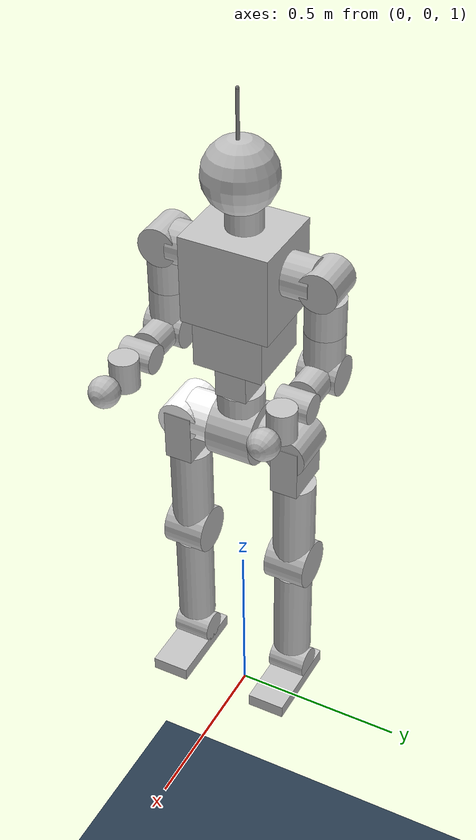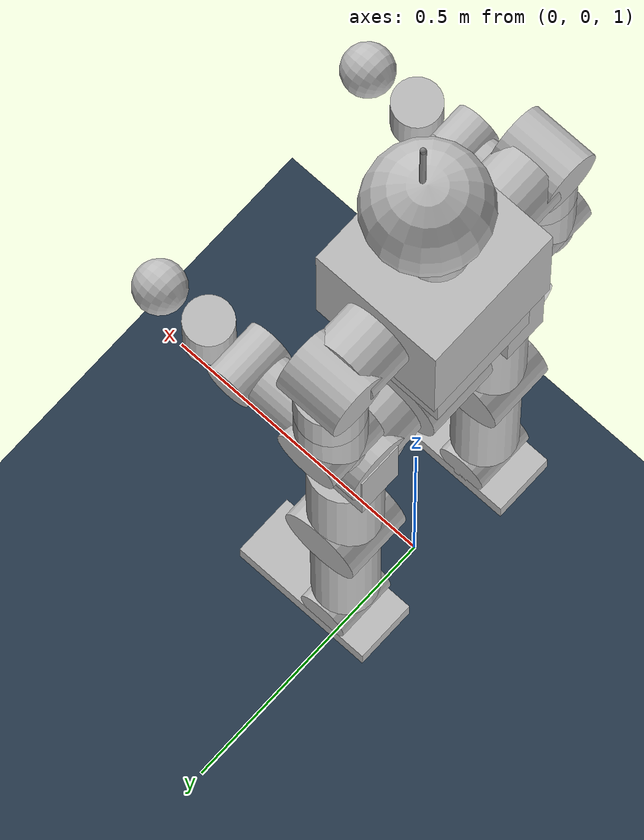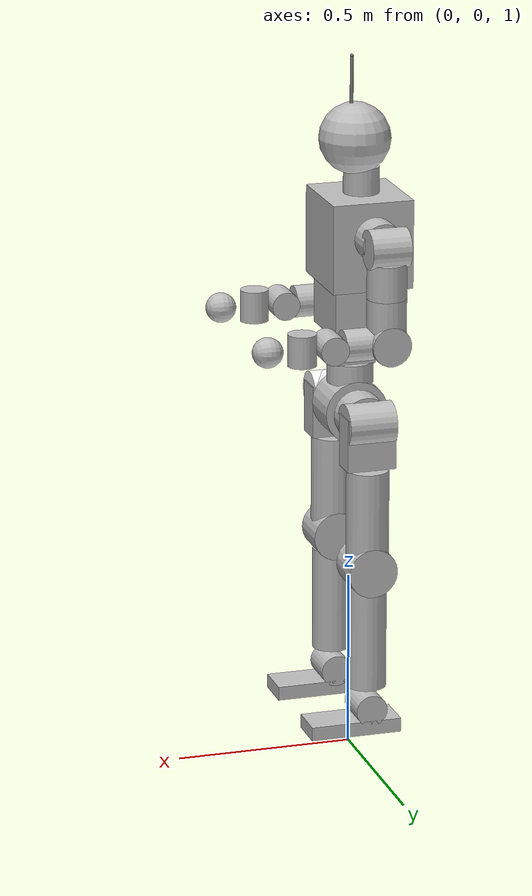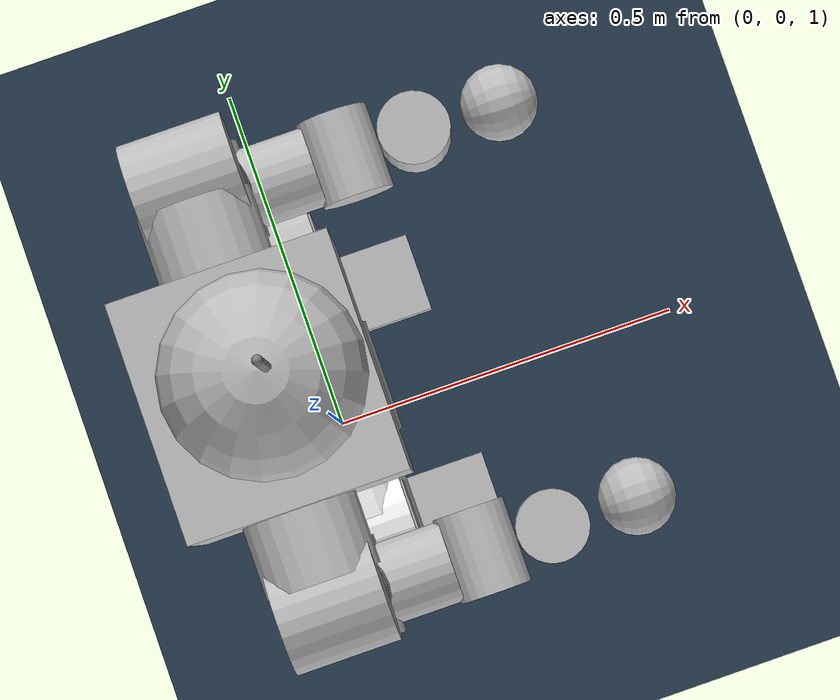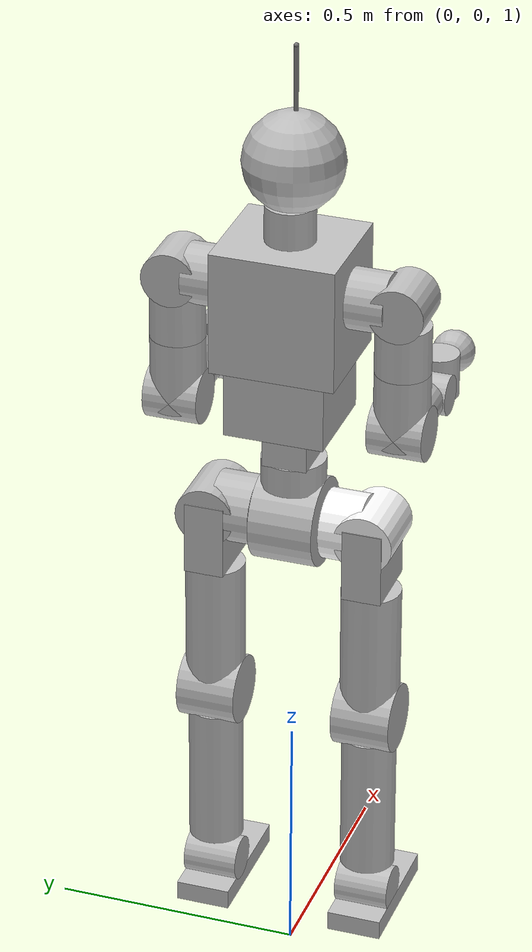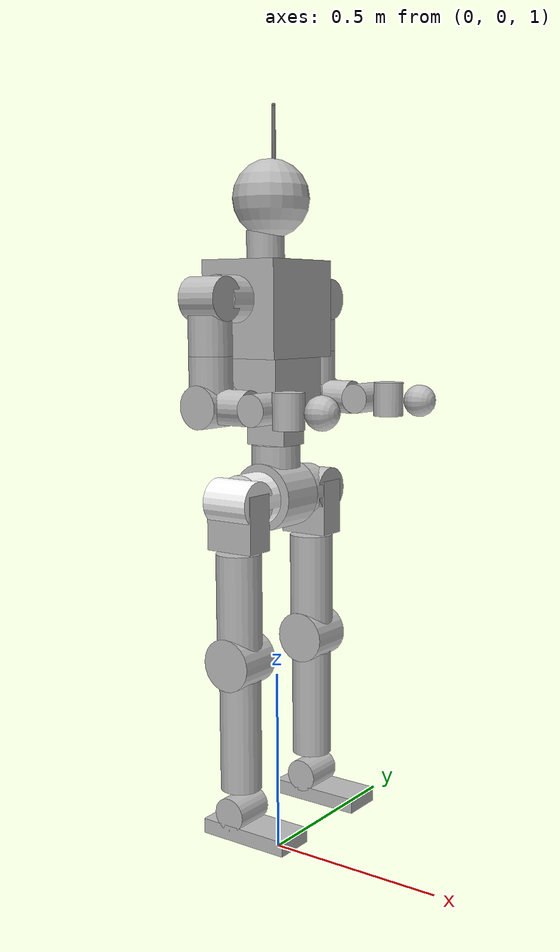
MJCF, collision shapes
<mujoco model="DR2">
  <compiler angle="radian" meshdir="./meshes/"/>

  <asset>

     <texture type="skybox" builtin="gradient" rgb1="0.3 0.5 0.7" rgb2="0 0 0" width="512" height="512"/>
        <texture name="texplane" type="2d" builtin="checker" rgb1=".2 .3 .4" rgb2=".1 0.15 0.2" width="512" height="512" mark="cross" markrgb=".8 .8 .8"/>
        <texture name="texplane2" type="2d" builtin="checker" rgb1="1 0.3137 0.1843" rgb2="0.0 0.30196 0.38039" width="512" height="512" mark="cross" markrgb=".8 .8 .8"/>
        <material name="matplane" reflectance="0." texture="texplane" texrepeat="1 1" texuniform="true"/>
        <material name="matplane2" reflectance="0.1" texture="texplane2" texrepeat="1 1" texuniform="true"/>

    <mesh name="base" file="base.stl"/>
    <mesh name="waist_z" file="waist_z.stl"/>
    <mesh name="waist_x" file="waist_x.stl"/>
    <mesh name="body" file="body.stl"/>
    <mesh name="shoulder_y" file="shoulder_y.stl"/>
    <mesh name="shoulder_x" file="shoulder_x.stl"/>
    <mesh name="shoulder_z" file="shoulder_z.stl"/>
    <mesh name="elbow" file="elbow.stl"/>
    <mesh name="wrist_z" file="wrist_z.stl"/>
    <mesh name="wrist_y" file="wrist_y.stl"/>
    <mesh name="wrist_x" file="wrist_x.stl"/>
    <mesh name="hip_y" file="hip_y.stl"/>
    <mesh name="hip_x" file="hip_x.stl"/>
    <mesh name="hip_z" file="hip_z.stl"/>
    <mesh name="knee" file="knee.stl"/>
    <mesh name="ankle_y" file="ankle_y.stl"/>
    <mesh name="ankle_x" file="ankle_x.stl"/>
  </asset>

  <worldbody>
        <light directional="true" diffuse=".4 .4 .4" specular="0.1 0.1 0.1" pos="0 0 5.0" dir="0 0 -1" castshadow="false"/>
        <light directional="true" diffuse=".6 .6 .6" specular="0.2 0.2 0.2" pos="0 0 4" dir="0 0 -1"/>
        <geom name="ground" type="plane" size="0 0 1" pos="0.001 0 0" quat="1 0 0 0" material="matplane" condim="1" conaffinity='15'  group="2" />

 <!-- 头顶挂钩 -->
    <site name="ceiling_hook" pos="0 0 3"/>

    <body name="base_link" pos="0 0 2.0">
      <geom type="mesh" contype="0" conaffinity="0" group="1" density="0" rgba="0.75294 0.75294 0.75294 1" mesh="base"/>
      <geom size="0.09 0.065" quat="0.707107 0.707107 0 0" type="cylinder" rgba="0.75294 0.75294 0.75294 1"/>
      <site name='imu' size='0.01' pos='0.0 0 0.0'/>
      <site name="imu_site" pos="0. 0. -0.068" size="0.005" rgba="1 0 0 1"/>
      <site name="base_site" pos="0 0 0" quat="1 0 0 0"/>

      <body name="waist_z_link" pos="0 0 0.176">
        <inertial pos="0.00104 -0.00048 -0.01227" quat="0.441452 0.537958 0.459587 0.551816" mass="1.84403" diaginertia="0.00351223 0.00345809 0.00319968"/>
        <joint name="waist_z_joint" pos="0 0 0" axis="0 0 1" range="-3.6652 1.7453" actuatorfrcrange="-107 107"/>
        <geom type="mesh" contype="0" conaffinity="0" group="1" density="0" rgba="0.75294 0.75294 0.75294 1" mesh="waist_z"/>
        <geom size="0.065 0.03" pos="0 0 -0.07" type="cylinder" rgba="0.75294 0.75294 0.75294 1"/>
        <body name="waist_x_link">
          <inertial pos="-0.00258 0.00086 0.09228" quat="0.650708 0.0533482 0.0532416 0.755578" mass="3.40004" diaginertia="0.0130785 0.0127129 0.00866858"/>
          <joint name="waist_x_joint" pos="0 0 0" axis="1 0 0" range="-0.7854 0.7854" actuatorfrcrange="-107 107"/>
          <geom type="mesh" contype="0" conaffinity="0" group="1" density="0" rgba="0.75294 0.75294 0.75294 1" mesh="waist_x"/>
          <geom size="0.06 0.045 0.07" pos="0 0 0.03" type="box" rgba="0.75294 0.75294 0.75294 1"/>
          <body name="body" pos="0 0 0.114">
                <site name="body_site" pos="0 0 0" quat="1 0 0 0"/>

            <inertial pos="-0.03514 -0.00347 0.18093" quat="0.951381 -0.0192713 0.0416867 0.304573" mass="17.7226" diaginertia="0.280529 0.270458 0.158322"/>
            <joint name="waist_y_joint" pos="0 0 0" axis="0 1 0" range="-0.5236 1.5708" actuatorfrcrange="-413 413"/>
            <geom type="mesh" contype="0" conaffinity="0" group="1" density="0" rgba="0.75294 0.75294 0.75294 1" mesh="body"/>
            <geom size="0.1 0.1 0.1875" pos="-0.025 0 0.125" type="box" rgba="0.75294 0.75294 0.75294 1"/>
            <geom size="0.115 0.125 0.125" pos="-0.025 0 0.2" type="box" rgba="0.75294 0.75294 0.75294 1"/>
            <geom size="0.05 0.05" pos="-0.029 0 0.35" type="cylinder" rgba="0.75294 0.75294 0.75294 1"/>
            <geom size="0.1" pos="-0.01 0 0.48" rgba="0.75294 0.75294 0.75294 1"/>
            <body name="left_shoulder_y_link" pos="-0.03 0.22635 0.225">
              <inertial pos="-0.00283 -0.01423 -0.00089" quat="0.54528 0.545862 -0.456723 0.442842" mass="1.82215" diaginertia="0.00402614 0.00386441 0.00252945"/>
              <joint name="left_shoulder_y_joint" pos="0 0 0" axis="0 1 0" range="-3.3161 1.5708" actuatorfrcrange="-107 107"/>
              <geom quat="0.707107 -0.707107 0 0" type="mesh" contype="0" conaffinity="0" group="1" density="0" rgba="0.75294 0.75294 0.75294 1" mesh="shoulder_y"/>
              <geom size="0.06 0.05" pos="0 -0.075 0" quat="0.707107 0.707107 0 0" type="cylinder" rgba="0.75294 0.75294 0.75294 1"/>
              <body name="left_shoulder_x_link">
                <inertial pos="0.00263 0 -0.05349" quat="0.680193 -0.193229 -0.193229 0.680193" mass="0.97689" diaginertia="0.0031 0.00274687 0.00214313"/>
                <joint name="left_shoulder_x_joint" pos="0 0 0" axis="1 0 0" range="-0.43633 3.5779" actuatorfrcrange="-107 107"/>
                <geom type="mesh" contype="0" conaffinity="0" group="1" density="0" rgba="0.75294 0.75294 0.75294 1" mesh="shoulder_x"/>
                <geom size="0.055 0.05" pos="0 0 -0.09" type="cylinder" rgba="0.75294 0.75294 0.75294 1"/>
                <geom size="0.055 0.055" quat="0.707107 0 0.707107 0" type="cylinder" rgba="0.75294 0.75294 0.75294 1"/>
                <body name="left_shoulder_z_link" pos="0 0 -0.265">
                  <inertial pos="-0.00978 -0.00126 0.09022" quat="0.999153 0.02114 -0.02756 -0.022052" mass="1.9789" diaginertia="0.00921773 0.00904872 0.00366355"/>
                  <joint name="left_shoulder_z_joint" pos="0 0 0" axis="0 0 1" range="-2.9671 2.9671" actuatorfrcrange="-107 107"/>
                  <geom type="mesh" contype="0" conaffinity="0" group="1" density="0" rgba="0.75294 0.75294 0.75294 1" mesh="shoulder_z"/>
                  <geom size="0.055 0.075" pos="0 0 0.05" type="cylinder" rgba="0.75294 0.75294 0.75294 1"/>
                  <body name="left_elbow_link" quat="0.707107 0 -0.707107 0">
                    <inertial pos="-0.00024 0.00041 -0.02569" quat="0.952257 0.000711115 -0.0110603 0.305096" mass="2.12943" diaginertia="0.00532275 0.00525845 0.00288881"/>
                    <joint name="left_elbow_joint" pos="0 0 0" axis="0 1 0" range="-0.767945 1.74533" actuatorfrcrange="-107 107"/>
                    <geom type="mesh" contype="0" conaffinity="0" group="1" density="0" rgba="0.75294 0.75294 0.75294 1" mesh="elbow"/>
                    <geom size="0.055 0.055" quat="0.707107 0.707107 0 0" type="cylinder" rgba="0.75294 0.75294 0.75294 1"/>
                    <geom size="0.045 0.075" pos="0 0 -0.05" type="cylinder" rgba="0.75294 0.75294 0.75294 1"/>
                    <body name="left_wrist_z_link" pos="0 0 -0.16">
                      <inertial pos="3e-05 0.00439 0.00857" mass="0.79873" diaginertia="0.00085 0.0008 0.00072"/>
                      <joint name="left_wrist_z_joint" pos="0 0 0" axis="0 0 1" range="-2.9671 2.9671" actuatorfrcrange="-31 31"/>
                      <geom type="mesh" contype="0" conaffinity="0" group="1" density="0" rgba="0.75294 0.75294 0.75294 1" mesh="wrist_z"/>
                      <geom size="0.04 0.0475" quat="0.707107 0.707107 0 0" type="cylinder" rgba="0.75294 0.75294 0.75294 1"/>
                      <body name="left_wrist_y_link">
                        <inertial pos="0.00237 -0.0016 -0.05688" quat="0.991666 -0.127747 0.0147584 0.00787091" mass="0.96977" diaginertia="0.00183063 0.00156879 0.00112059"/>
                        <joint name="left_wrist_y_joint" pos="0 0 0" axis="0 1 0" range="-1.5708 1.5708" actuatorfrcrange="-31 31"/>
                        <geom type="mesh" contype="0" conaffinity="0" group="1" density="0" rgba="0.75294 0.75294 0.75294 1" mesh="wrist_y"/>
                        <geom size="0.04 0.045" pos="0 0 -0.08" quat="0.707107 0 0.707107 0" type="cylinder" rgba="0.75294 0.75294 0.75294 1"/>
                        <body name="left_wrist_x_link" pos="0 0 -0.08">
                          <inertial pos="-0.00177 -0.00028 -0.05143" quat="0.706299 0.0337841 0.0337841 0.706299" mass="0.31088" diaginertia="0.00089 0.000702877 0.000387123"/>
                          <joint name="left_wrist_x_joint" pos="0 0 0" axis="1 0 0" range="-1.5708 1.5708" actuatorfrcrange="-31 31"/>
                          <geom type="mesh" contype="0" conaffinity="0" group="1" density="0" rgba="0.75294 0.75294 0.75294 1" mesh="wrist_x"/>
                          <geom size="0.0425" pos="0 0 -0.0975" rgba="0.75294 0.75294 0.75294 1"/>
                        </body>
                      </body>
                    </body>
                  </body>
                </body>
              </body>
            </body>
            <body name="right_shoulder_y_link" pos="-0.03 -0.22635 0.225">
              <inertial pos="-0.00283 0.01423 0.00089" quat="0.537666 0.552004 -0.449614 0.451724" mass="1.82215" diaginertia="0.00402595 0.00386463 0.00252942"/>
              <joint name="right_shoulder_y_joint" pos="0 0 0" axis="0 1 0" range="-3.3161 1.5708" actuatorfrcrange="-107 107"/>
              <geom quat="0.707107 0.707107 0 0" type="mesh" contype="0" conaffinity="0" group="1" density="0" rgba="0.75294 0.75294 0.75294 1" mesh="shoulder_y"/>
              <geom size="0.06 0.05" pos="0 0.075 0" quat="0.707107 0.707107 0 0" type="cylinder" rgba="0.75294 0.75294 0.75294 1"/>
              <body name="right_shoulder_x_link">
                <inertial pos="0.00263 0 -0.05349" quat="0.680193 0.193229 0.193229 0.680193" mass="0.97689" diaginertia="0.0031 0.00274687 0.00214313"/>
                <joint name="right_shoulder_x_joint" pos="0 0 0" axis="1 0 0" range="-3.5779 0.43633" actuatorfrcrange="-107 107"/>
                <geom type="mesh" contype="0" conaffinity="0" group="1" density="0" rgba="0.75294 0.75294 0.75294 1" mesh="shoulder_x"/>
                <geom size="0.055 0.05" pos="0 0 -0.09" type="cylinder" rgba="0.75294 0.75294 0.75294 1"/>
                <geom size="0.055 0.055" quat="0.707107 0 0.707107 0" type="cylinder" rgba="0.75294 0.75294 0.75294 1"/>
                <body name="right_shoulder_z_link" pos="0 0 -0.265">
                  <inertial pos="-0.00978 -0.00126 0.09022" quat="0.999153 0.02114 -0.02756 -0.022052" mass="1.9789" diaginertia="0.00921773 0.00904872 0.00366355"/>
                  <joint name="right_shoulder_z_joint" pos="0 0 0" axis="0 0 1" range="-2.9671 2.9671" actuatorfrcrange="-107 107"/>
                  <geom type="mesh" contype="0" conaffinity="0" group="1" density="0" rgba="0.752941 0.752941 0.752941 1" mesh="shoulder_z"/>
                  <geom size="0.055 0.075" pos="0 0 0.05" type="cylinder" rgba="0.752941 0.752941 0.752941 1"/>
                  <body name="right_elbow_link" quat="0.707107 0 -0.707107 0">
                    <inertial pos="-0.00024 0.00041 -0.02569" quat="0.952777 -0.00327104 -0.00984032 0.303495" mass="2.12943" diaginertia="0.0053223 0.00525873 0.00288896"/>
                    <joint name="right_elbow_joint" pos="0 0 0" axis="0 1 0" range="-0.767945 1.74533" actuatorfrcrange="-107 107"/>
                    <geom type="mesh" contype="0" conaffinity="0" group="1" density="0" rgba="0.75294 0.75294 0.75294 1" mesh="elbow"/>
                    <geom size="0.055 0.055" quat="0.707107 0.707107 0 0" type="cylinder" rgba="0.75294 0.75294 0.75294 1"/>
                    <geom size="0.045 0.075" pos="0 0 -0.05" type="cylinder" rgba="0.75294 0.75294 0.75294 1"/>
                    <body name="right_wrist_z_link" pos="0 0 -0.16">
                      <inertial pos="3e-05 0.00439 0.00857" quat="0.703487 0.0714533 -0.0714533 0.703487" mass="0.79873" diaginertia="0.000866158 0.00085 0.000713842"/>
                      <joint name="right_wrist_z_joint" pos="0 0 0" axis="0 0 1" range="-2.9671 2.9671" actuatorfrcrange="-31 31"/>
                      <geom type="mesh" contype="0" conaffinity="0" group="1" density="0" rgba="0.75294 0.75294 0.75294 1" mesh="wrist_z"/>
                      <geom size="0.04 0.0475" quat="0.707107 0.707107 0 0" type="cylinder" rgba="0.75294 0.75294 0.75294 1"/>
                      <body name="right_wrist_y_link">
                        <inertial pos="0.00237 -0.0016 -0.05988" quat="0.991666 -0.127747 0.0147584 0.00787091" mass="0.96977" diaginertia="0.00183063 0.00156879 0.00112059"/>
                        <joint name="right_wrist_y_joint" pos="0 0 0" axis="0 1 0" range="-1.5708 1.5708" actuatorfrcrange="-31 31"/>
                        <geom type="mesh" contype="0" conaffinity="0" group="1" density="0" rgba="0.75294 0.75294 0.75294 1" mesh="wrist_y"/>
                        <geom size="0.04 0.045" pos="0 0 -0.08" quat="0.707107 0 0.707107 0" type="cylinder" rgba="0.75294 0.75294 0.75294 1"/>
                        <body name="right_wrist_x_link" pos="0 0 -0.08">
                          <inertial pos="-0.00177 -0.00028 -0.05143" quat="0.706299 0.0337841 0.0337841 0.706299" mass="0.31088" diaginertia="0.00089 0.000702877 0.000387123"/>
                          <joint name="right_wrist_x_joint" pos="0 0 0" axis="1 0 0" range="-1.5708 1.5708" actuatorfrcrange="-31 31"/>
                          <geom type="mesh" contype="0" conaffinity="0" group="1" density="0" rgba="0.75294 0.75294 0.75294 1" mesh="wrist_x"/>
                          <geom size="0.0425" pos="0 0 -0.0975" rgba="0.75294 0.75294 0.75294 1"/>
                        </body>
                      </body>
                    </body>
                  </body>
                </body>
              </body>
            </body>
          </body>
        </body>
      </body>
      <body name="left_hip_y_link" pos="0 0.162 0">
        <inertial pos="-0.00121 -0.01442 -0.0003" quat="0.763796 0.642733 -0.0552737 -0.0213256" mass="1.89927" diaginertia="0.00366741 0.003418 0.00310459"/>
        <joint name="left_hip_y_joint" pos="0 0 0" axis="0 1 0" range="-2.7925 1.5708" actuatorfrcrange="-413 413"/>
        <geom quat="4.48966e-11 1 0 0" type="mesh" contype="0" conaffinity="0" group="1" density="0" rgba="0.75294 0.75294 0.75294 1" mesh="hip_y"/>
        <geom size="0.07 0.04" pos="0 -0.05 0" quat="0.707107 0.707107 0 0" type="cylinder" rgba="0.75294 0.75294 0.75294 1"/>
        <geom size="0.06 0.0675" quat="0.707107 0 0.707107 0" type="cylinder" rgba="0.75294 0.75294 0.75294 1"/>
        <body name="left_hip_x_link">
          <inertial pos="0.00153 0.00791 -0.07015" quat="0.702158 -0.0477966 -0.0427511 0.709128" mass="1.75097" diaginertia="0.00954042 0.00724071 0.00534887"/>
          <joint name="left_hip_x_joint" pos="0 0 0" axis="1 0 0" range="-0.43633 2.618" actuatorfrcrange="-107 107"/>
          <geom quat="4.48966e-11 0 0 1" type="mesh" contype="0" conaffinity="0" group="1" density="0" rgba="0.75294 0.75294 0.75294 1" mesh="hip_x"/>
          <geom size="0.07 0.04 0.075" pos="0 0 -0.05" type="box" rgba="0.75294 0.75294 0.75294 1"/>
          <body name="left_hip_z_link" pos="0 0 -0.142">
            <inertial pos="-0.00126 0.00032 -0.04122" quat="0.999978 -0.000703661 0.00164653 0.00637947" mass="3.59517" diaginertia="0.0492207 0.0476398 0.0126795"/>
            <joint name="left_hip_z_joint" pos="0 0 0" axis="0 0 1" range="-0.5236 3.6652" actuatorfrcrange="-107 107"/>
            <geom type="mesh" contype="0" conaffinity="0" group="1" density="0" rgba="0.75294 0.75294 0.75294 1" mesh="hip_z"/>
            <geom size="0.06 0.13" pos="0 0 -0.12" type="cylinder" rgba="0.75294 0.75294 0.75294 1"/>
            <body name="left_knee_link" pos="0 0 -0.278">
              <inertial pos="-0.00065 0.00024 -0.10231" quat="0.99888 0.002419 0.0146062 -0.0449355" mass="4.66882" diaginertia="0.0963486 0.0956174 0.00965401"/>
              <joint name="left_knee_joint" pos="0 0 0" axis="0 1 0" range="-0.17453 2.5307" actuatorfrcrange="-413 413"/>
              <geom type="mesh" contype="0" conaffinity="0" group="1" density="0" rgba="0.75294 0.75294 0.75294 1" mesh="knee"/>
              <geom size="0.07 0.06" quat="0.707107 0.707107 0 0" type="cylinder" rgba="0.75294 0.75294 0.75294 1"/>
              <geom size="0.055 0.15" pos="0 0 -0.2" type="cylinder" rgba="0.75294 0.75294 0.75294 1"/>
              <body name="left_ankle_y_link" pos="0 0 -0.41">
                <inertial pos="0.00233 -0.00031 -0.00088" quat="0.147007 0.700314 0.0210594 0.698216" mass="1.4119" diaginertia="0.00191483 0.00182875 0.00171641"/>
                <joint name="left_ankle_y_joint" pos="0 0 0" axis="0 1 0" range="-1.0472 0.7854" actuatorfrcrange="-107 107"/>
                <geom type="mesh" contype="0" conaffinity="0" group="1" density="0" rgba="0.75294 0.75294 0.75294 1" mesh="ankle_y"/>
                <geom size="0.045 0.055" quat="0.707107 0.707107 0 0" type="cylinder" rgba="0.75294 0.75294 0.75294 1"/>
                <body name="left_ankle_x_link">
                  <inertial pos="0.05253 8e-05 -0.0295" quat="0.480731 0.519412 0.515511 0.48307" mass="1.78979" diaginertia="0.01056 0.0104471 0.00311293"/>
                  <joint name="left_ankle_x_joint" pos="0 0 0" axis="1 0 0" range="-0.61087 0.61087" actuatorfrcrange="-31 31"/>
                  <geom type="mesh" contype="0" conaffinity="0" group="1" density="0" rgba="0.75294 0.75294 0.75294 1" mesh="ankle_x"/>
                  <geom size="0.13 0.055 0.02" pos="0.045 0 -0.05" type="box" rgba="0.75294 0.75294 0.75294 1"/>
                </body>
              </body>
            </body>
          </body>
        </body>
      </body>
      <body name="right_hip_y_link" pos="0 -0.162 0">
        <inertial pos="0.00121 0.01442 -0.0003" quat="0.642733 0.763796 -0.0213256 -0.0552737" mass="1.89927" diaginertia="0.00366741 0.003418 0.00310459"/>
        <joint name="right_hip_y_joint" pos="0 0 0" axis="0 1 0" range="-2.7925 1.5708" actuatorfrcrange="-413 413"/>
        <geom type="mesh" contype="0" conaffinity="0" group="1" density="0" rgba="1 1 1 1" mesh="hip_y"/>
        <geom size="0.07 0.04" pos="0 0.05 0" quat="0.707107 0.707107 0 0" type="cylinder" rgba="1 1 1 1"/>
        <geom size="0.06 0.0675" quat="0.707107 0 0.707107 0" type="cylinder" rgba="1 1 1 1"/>
        <body name="right_hip_x_link">
          <inertial pos="-0.00153 -0.00791 -0.07015" quat="0.702158 0.0477966 0.0427511 0.709128" mass="1.75097" diaginertia="0.00954042 0.00724071 0.00534887"/>
          <joint name="right_hip_x_joint" pos="0 0 0" axis="1 0 0" range="-2.618 0.43633" actuatorfrcrange="-107 107"/>
          <geom type="mesh" contype="0" conaffinity="0" group="1" density="0" rgba="0.75294 0.75294 0.75294 1" mesh="hip_x"/>
          <geom size="0.07 0.04 0.075" pos="0 0 -0.05" type="box" rgba="0.75294 0.75294 0.75294 1"/>
          <body name="right_hip_z_link" pos="0 0 -0.142">
            <inertial pos="-0.00126 0.00032 -0.04122" quat="0.999979 0.000726316 0.00163749 0.00627329" mass="3.59517" diaginertia="0.0492206 0.0476398 0.0126795"/>
            <joint name="right_hip_z_joint" pos="0 0 0" axis="0 0 1" range="-3.6652 0.5236" actuatorfrcrange="-107 107"/>
            <geom type="mesh" contype="0" conaffinity="0" group="1" density="0" rgba="0.75294 0.75294 0.75294 1" mesh="hip_z"/>
            <geom size="0.06 0.13" pos="0 0 -0.12" type="cylinder" rgba="0.75294 0.75294 0.75294 1"/>
            <body name="right_knee_link" pos="0 0 -0.278">
              <inertial pos="-0.00065 0.00024 -0.10231" quat="0.99888 0.002419 0.0146062 -0.0449355" mass="4.66882" diaginertia="0.0963486 0.0956174 0.00965401"/>
              <joint name="right_knee_joint" pos="0 0 0" axis="0 1 0" range="-0.17453 2.5307" actuatorfrcrange="-413 413"/>
              <geom type="mesh" contype="0" conaffinity="0" group="1" density="0" rgba="0.75294 0.75294 0.75294 1" mesh="knee"/>
              <geom size="0.07 0.06" quat="0.707107 0.707107 0 0" type="cylinder" rgba="0.75294 0.75294 0.75294 1"/>
              <geom size="0.055 0.15" pos="0 0 -0.2" type="cylinder" rgba="0.75294 0.75294 0.75294 1"/>
              <body name="right_ankle_y_link" pos="0 0 -0.41">
                <inertial pos="0.00233 -0.00031 0.00088" quat="0.137386 0.700402 -3.02034e-08 0.700402" mass="1.4119" diaginertia="0.00192392 0.00182 0.00171608"/>
                <joint name="right_ankle_y_joint" pos="0 0 0" axis="0 1 0" range="-1.0472 0.7854" actuatorfrcrange="-107 107"/>
                <geom type="mesh" contype="0" conaffinity="0" group="1" density="0" rgba="0.75294 0.75294 0.75294 1" mesh="ankle_y"/>
                <geom size="0.045 0.055" quat="0.707107 0.707107 0 0" type="cylinder" rgba="0.75294 0.75294 0.75294 1"/>
                <body name="right_ankle_x_link">
                  <inertial pos="0.05253 8e-05 -0.0295" quat="0.480731 0.519412 0.515511 0.48307" mass="1.78979" diaginertia="0.01056 0.0104471 0.00311293"/>
                  <joint name="right_ankle_x_joint" pos="0 0 0" axis="1 0 0" range="-0.61087 0.61087" actuatorfrcrange="-31 31"/>
                  <geom type="mesh" contype="0" conaffinity="0" group="1" density="0" rgba="0.75294 0.75294 0.75294 1" mesh="ankle_x"/>
                  <geom size="0.13 0.055 0.02" pos="0.045 0 -0.05" type="box" rgba="0.75294 0.75294 0.75294 1"/>
                </body>
              </body>
            </body>
          </body>
        </body>
      </body>
    </body>
  </worldbody>

      <tendon>
        <spatial name="suspension_tendon" width="0.005" stiffness="10000">
          <!-- 连接到机器人顶端 -->
          <site site="ceiling_hook"/>
          <site site="body_site"/>
         </spatial>
      </tendon>

    <actuator>

        <!-- 腰部关节 -->
        <motor name="waist_z_joint" joint="waist_z_joint" gear="1" ctrllimited="true" ctrlrange="-107 107"/>
        <motor name="waist_x_joint" joint="waist_x_joint" gear="1" ctrllimited="true" ctrlrange="-107 107"/>
        <motor name="waist_y_joint" joint="waist_y_joint" gear="1" ctrllimited="true" ctrlrange="-413 413"/>

        <!-- 左臂关节 -->
        <motor name="left_shoulder_y_joint"    joint="left_shoulder_y_joint" gear="1" ctrllimited="true" ctrlrange="-107 107"/>
        <motor name="left_shoulder_x_joint"   joint="left_shoulder_x_joint" gear="1" ctrllimited="true" ctrlrange="-107 107"/>
        <motor name="left_shoulder_z_joint"     joint="left_shoulder_z_joint" gear="1" ctrllimited="true" ctrlrange="-107 107"/>
        <motor name="left_elbow_joint"            joint="left_elbow_joint" gear="1" ctrllimited="true" ctrlrange="-107 107"/>
        <motor name="left_wrist_z_joint"       joint="left_wrist_z_joint"  gear="1" ctrllimited="true" ctrlrange="-31 31"/>
        <motor name="left_wrist_y_joint"      joint="left_wrist_y_joint"   gear="1" ctrllimited="true" ctrlrange="-31 31"/>
        <motor name="left_wrist_x_joint"        joint="left_wrist_x_joint" gear="1" ctrllimited="true" ctrlrange="-31 31"/>

        <!-- 右臂关节 -->
        <motor name="right_shoulder_y_joint"    joint="right_shoulder_y_joint" gear="1" ctrllimited="true" ctrlrange="-107 107"/>
        <motor name="right_shoulder_x_joint"   joint="right_shoulder_x_joint" gear="1" ctrllimited="true" ctrlrange="-107 107"/>
        <motor name="right_shoulder_z_joint"     joint="right_shoulder_z_joint" gear="1" ctrllimited="true" ctrlrange="-107 107"/>
        <motor name="right_elbow_joint"            joint="right_elbow_joint" gear="1" ctrllimited="true" ctrlrange="-107 107"/>
        <motor name="right_wrist_z_joint"       joint="right_wrist_z_joint" gear="1" ctrllimited="true" ctrlrange="-31 31"/>
        <motor name="right_wrist_y_joint"      joint="right_wrist_y_joint" gear="1" ctrllimited="true" ctrlrange="-31 31"/>
        <motor name="right_wrist_x_joint"        joint="right_wrist_x_joint" gear="1" ctrllimited="true" ctrlrange="-31 31"/>

        <!-- 左腿关节 -->
        <motor name="left_hip_y_joint" joint="left_hip_y_joint"     gear="1" ctrllimited="true"       ctrlrange="-413 413"/>
        <motor name="left_hip_x_joint" joint="left_hip_x_joint"     gear="1" ctrllimited="true"       ctrlrange="-107 107"/>
        <motor name="left_hip_z_joint" joint="left_hip_z_joint"     gear="1" ctrllimited="true"       ctrlrange="-107 107"/>
        <motor name="left_knee_joint" joint="left_knee_joint"       gear="1" ctrllimited="true"       ctrlrange="-413 413"/>
        <motor name="left_ankle_y_joint" joint="left_ankle_y_joint" gear="1" ctrllimited="true"       ctrlrange="-107 107"/>
        <motor name="left_ankle_x_joint" joint="left_ankle_x_joint" gear="1" ctrllimited="true"       ctrlrange="-31 31"/>

        <!-- 右腿关节 -->
        <motor name="right_hip_y_joint"    joint="right_hip_y_joint"    gear="1" ctrllimited="true"         ctrlrange="-413 413"/>
        <motor name="right_hip_x_joint"    joint="right_hip_x_joint"    gear="1" ctrllimited="true"         ctrlrange="-107 107"/>
        <motor name="right_hip_z_joint"    joint="right_hip_z_joint"    gear="1" ctrllimited="true"         ctrlrange="-107 107"/>
        <motor name="right_knee_joint"     joint="right_knee_joint"     gear="1" ctrllimited="true"         ctrlrange="-413 413"/>
        <motor name="right_ankle_y_joint"  joint="right_ankle_y_joint"  gear="1" ctrllimited="true"         ctrlrange="-107 107"/>
        <motor name="right_ankle_x_joint"  joint="right_ankle_x_joint"  gear="1" ctrllimited="true"         ctrlrange="-31 31"/>

    </actuator>

  <sensor>
        <framequat name="base_quat" objtype="site" objname="base_site"/>
        <accelerometer site="imu_site"/>
        <gyro site="imu_site"/>

    </sensor>
</mujoco>
